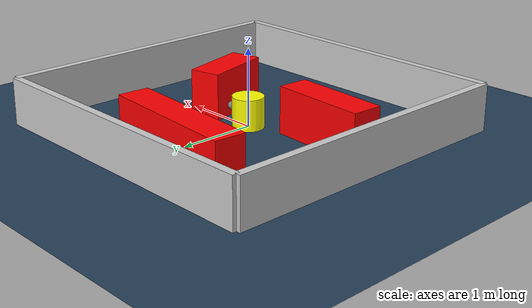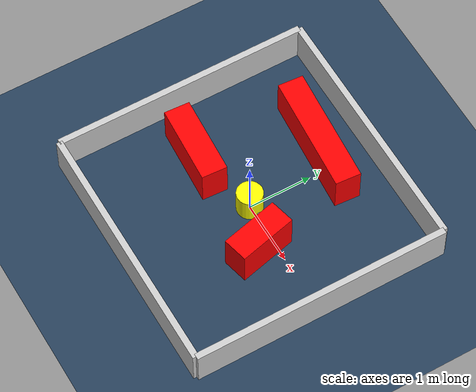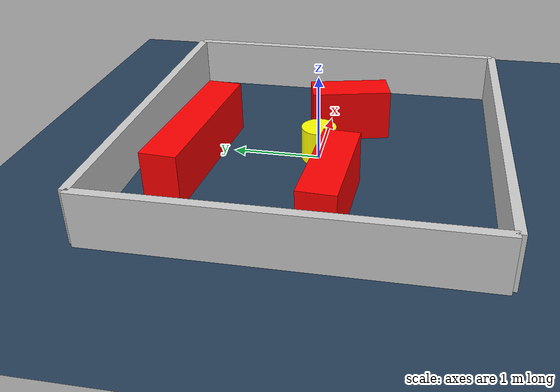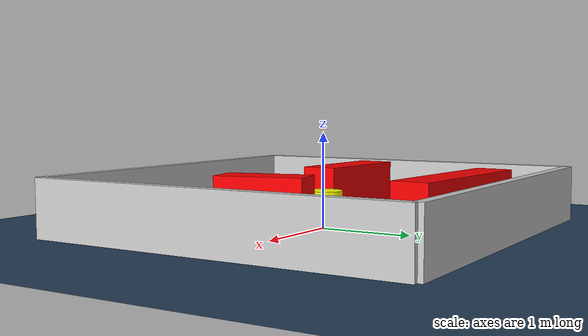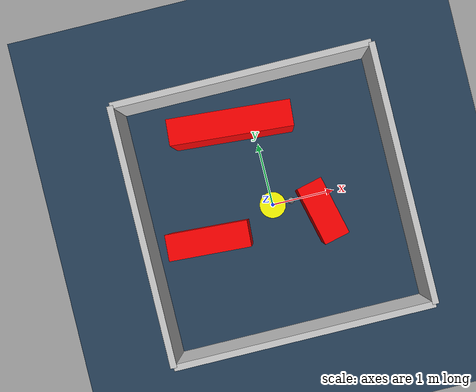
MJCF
<?xml version="1.0" ?>
<mujoco model="generated_environment">
  <option timestep="0.01" integrator="RK4" cone="elliptic"/>
  <default>
    <geom density="1"/>
  </default>
  <asset>
    <texture builtin="gradient" height="3072" rgb1="0.3 0.5 0.7" rgb2="0 0 0" type="skybox" width="512"/>
    <texture builtin="checker" height="300" mark="edge" markrgb="0.8 0.8 0.8" name="groundplane" rgb1="0.2 0.3 0.4" rgb2="0.1 0.2 0.3" type="2d" width="300"/>
    <material name="groundplane" reflectance="0.2" texrepeat="5 5" texture="groundplane" texuniform="true"/>
    <material name="robot" rgba="0.0 1.0 0.0 1"/>
  </asset>
  <worldbody>
    <light dir="0 0 -1" directional="true" pos="0 0 1.5"/>
    <geom condim="4" friction="1.0 0.005 0.001" material="groundplane" name="floor" size="0 0 0.05" type="plane"/>
    <body name="walls">
      <geom name="wall_1" condim="4" pos="-2.0 0.0 0.3" rgba="0.800000011920929 0.800000011920929 0.800000011920929 1.0" size="0.05 2.0 0.3" type="box"/>
      <geom name="wall_2" condim="4" pos="2.0 0.0 0.3" rgba="0.800000011920929 0.800000011920929 0.800000011920929 1.0" size="0.05 2.0 0.3" type="box"/>
      <geom name="wall_3" condim="4" pos="0.0 -2.0 0.3" rgba="0.800000011920929 0.800000011920929 0.800000011920929 1.0" size="2.0 0.05 0.3" type="box"/>
      <geom name="wall_4" condim="4" pos="0.0 2.0 0.3" rgba="0.800000011920929 0.800000011920929 0.800000011920929 1.0" size="2.0 0.05 0.3" type="box"/>
    </body>
    <body name="robot">
      <joint name="joint_x" type="slide" pos="0 0 0" axis="1 0 0"/>
      <joint name="joint_y" type="slide" pos="0 0 0" axis="0 1 0"/>
      <geom name="robot" type="sphere" pos="0.3 0.0 0.2" size="0.05" mass="5." friction="1.0 0.005 0.0001" condim="4" rgba="0.5 0.5 0.5 1.0"/>
      <site name="sensor_ball"/>
    </body>
    <body name="obstacle_movable_1">
      <geom name="obstacle_movable_1" condim="4" pos="0.0 0.0 0.2" euler="0 0 0.0" friction="1.0 0.005 0.001" rgba="1.0 1.0 0.0 1.0" size="0.2 0.2 0.0" type="cylinder" mass="0.1"/>
      <joint type="free"/>
    </body>
    <body name="obstacle_2_static">
      <geom name="obstacle_2_static" condim="4" pos="-1.0581343700456463 -0.2870445038548777 0.3" euler="0 0 356.68483829259026" friction="1.0 0.005 0.001" rgba="1 0 0 1" size="0.6211185102110898 0.2 0.3" type="box"/>
    </body>
    <body name="obstacle_3_static">
      <geom name="obstacle_3_static" condim="4" pos="-0.32681144859608247 1.3402316844730267 0.3" euler="0 0 355.685727636106" friction="1.0 0.005 0.001" rgba="1 0 0 1" size="0.9352216787347889 0.2 0.3" type="box"/>
    </body>
    <body name="obstacle_4_static">
      <geom name="obstacle_4_static" condim="4" pos="0.7054492312670859 -0.2623309613675848 0.3" euler="0 0 283.59364409059435" friction="1.0 0.005 0.001" rgba="1 0 0 1" size="0.460953916132717 0.2 0.3" type="box"/>
    </body>
  </worldbody>
  <actuator>
    <motor name="actuator_x" joint="joint_x" gear="1" ctrlrange="-1 1"/>
    <motor name="actuator_y" joint="joint_y" gear="1" ctrlrange="-1 1"/>
  </actuator>
</mujoco>
